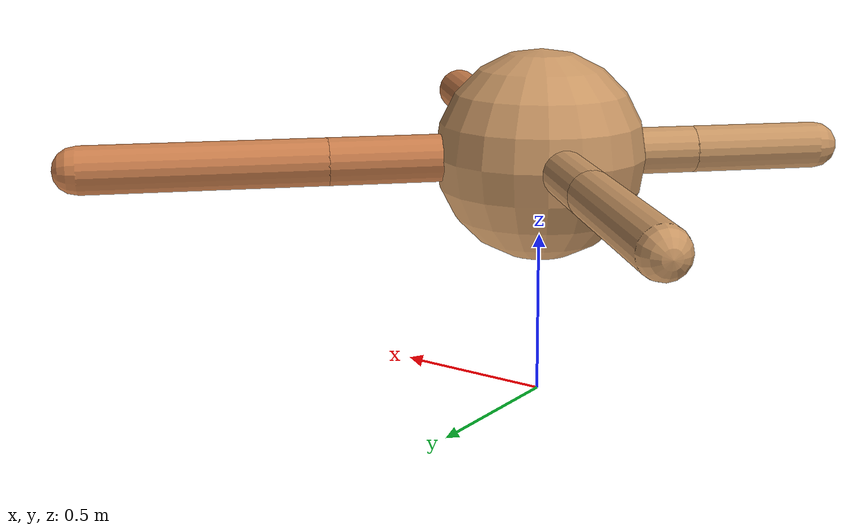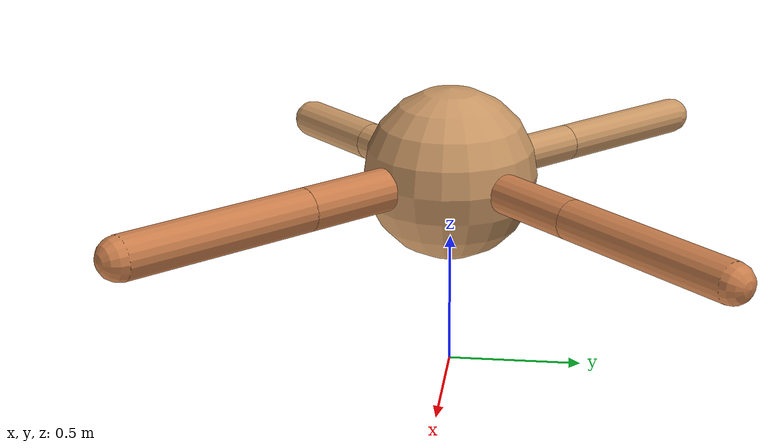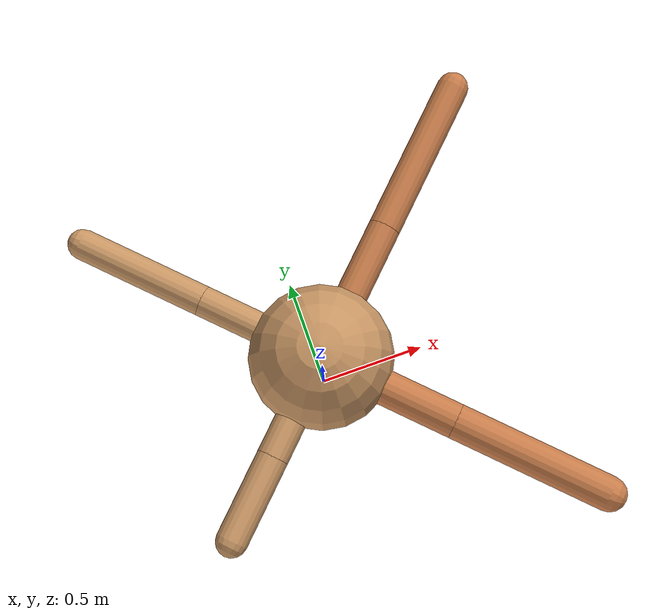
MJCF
<?xml version="1.0" ?>
<mujoco model="ant">

	<compiler angle="degree" coordinate="local" inertiafromgeom="true"/>

	<option integrator="RK4" timestep="0.01"/>

	<custom>

		<numeric data="0.0 0.0 0.55 1.0 0.0 0.0 0.0 0.0 1.0 0.0 -1.0 0.0 -1.0 0.0 1.0" name="init_qpos"/>

	</custom>

	<default>

		<joint armature="1" damping="1" limited="true"/>

		<geom conaffinity="0" condim="3" density="5.0" friction="1.5 0.1 0.1" margin="0.01" rgba="0.8 0.6 0.4 1"/>

	</default>

	<worldbody>

		<body name="torso" pos="0 0 0.75">

			<geom name="torso_geom" pos="0 0 0" size="0.31991913842376096" type="sphere"/>

			<!--joint armature="0" damping="0" limited="false" margin="0.01" name="root" pos="0 0 0" type="free"/-->

			<body name="front_left_leg" pos="0 0 0">

				<geom fromto="0 0 0 0.2 0.2 0" name="aux_1_geom" size="0.07135658606022607" type="capsule" rgba=".8 .5 .3 1"/>

				<body name="aux_1" pos="0.2 0.2 0">

					<joint axis="0 0 1" name="hip_1" pos="0.0 0.0 0.0" range="-40 40" type="hinge"/>

					<geom fromto="0 0 0 0.2536873119409053 0.2536873119409053 0" name="left_leg_geom" size="0.07135658606022607" type="capsule" rgba=".8 .5 .3 1"/>

					<body pos="0.2536873119409053 0.2536873119409053 0" name="front_left_foot">

						<joint axis="-1 1 0" name="ankle_1" pos="0.0 0.0 0.0" range="30 100" type="hinge"/>

						<geom fromto="0 0 0 0.5073746238818106 0.5073746238818106 0" name="left_ankle_geom" size="0.07135658606022607" type="capsule" rgba=".8 .5 .3 1"/>

					</body>

				</body>

			</body>

			<body name="front_right_leg" pos="0 0 0">

				<geom fromto="0 0 0 -0.2 0.2 0" name="aux_2_geom" size="0.06820959366630722" type="capsule"/>

				<body name="aux_2" pos="-0.2 0.2 0">

					<joint axis="0 0 1" name="hip_2" pos="0.0 0.0 0.0" range="-40 40" type="hinge"/>

					<geom fromto="0 0 0 -0.208276435772427 0.208276435772427 0" name="right_leg_geom" size="0.06820959366630722" type="capsule"/>

					<body pos="-0.208276435772427 0.208276435772427 0" name="front_right_foot">

						<joint axis="1 1 0" name="ankle_2" pos="0.0 0.0 0.0" range="-100 -30" type="hinge"/>

						<geom fromto="0 0 0 -0.416552871544854 0.416552871544854 0" name="right_ankle_geom" size="0.06820959366630722" type="capsule"/>

					</body>

				</body>

			</body>

			<body name="left_back_leg" pos="0 0 0">

				<geom fromto="0 0 0 -0.2 -0.2 0" name="aux_3_geom" size="0.07104019591496603" type="capsule"/>

				<body name="aux_3" pos="-0.2 -0.2 0">

					<joint axis="0 0 1" name="hip_3" pos="0.0 0.0 0.0" range="-40 40" type="hinge"/>

					<geom fromto="0 0 0 -0.14002619028495972 -0.14002619028495972 0" name="back_leg_geom" size="0.07104019591496603" type="capsule"/>

					<body pos="-0.14002619028495972 -0.14002619028495972 0" name="left_back_foot">

						<joint axis="-1 1 0" name="ankle_3" pos="0.0 0.0 0.0" range="-100 -30" type="hinge"/>

						<geom fromto="0 0 0 -0.28005238056991943 -0.28005238056991943 0" name="third_ankle_geom" size="0.07104019591496603" type="capsule"/>

					</body>

				</body>

			</body>

			<body name="right_back_leg" pos="0 0 0">

				<geom fromto="0 0 0 0.2 -0.2 0" name="aux_4_geom" size="0.07846960325292794" type="capsule" rgba=".8 .5 .3 1"/>

				<body name="aux_4" pos="0.2 -0.2 0">

					<joint axis="0 0 1" name="hip_4" pos="0.0 0.0 0.0" range="-40 40" type="hinge"/>

					<geom fromto="0 0 0 0.25518592860953376 -0.25518592860953376 0" name="rightback_leg_geom" size="0.07846960325292794" type="capsule" rgba=".8 .5 .3 1"/>

					<body pos="0.25518592860953376 -0.25518592860953376 0" name="right_back_foot">

						<joint axis="1 1 0" name="ankle_4" pos="0.0 0.0 0.0" range="30 100" type="hinge"/>

						<geom fromto="0 0 0 0.5103718572190675 -0.5103718572190675 0" name="fourth_ankle_geom" size="0.07846960325292794" type="capsule" rgba=".8 .5 .3 1"/>

					</body>

				</body>

			</body>

		</body>

	</worldbody>

	<actuator>

		<motor ctrllimited="true" ctrlrange="-1.0 1.0" joint="hip_4" gear="150"/>

		<motor ctrllimited="true" ctrlrange="-1.0 1.0" joint="ankle_4" gear="150"/>

		<motor ctrllimited="true" ctrlrange="-1.0 1.0" joint="hip_1" gear="150"/>

		<motor ctrllimited="true" ctrlrange="-1.0 1.0" joint="ankle_1" gear="150"/>

		<motor ctrllimited="true" ctrlrange="-1.0 1.0" joint="hip_2" gear="150"/>

		<motor ctrllimited="true" ctrlrange="-1.0 1.0" joint="ankle_2" gear="150"/>

		<motor ctrllimited="true" ctrlrange="-1.0 1.0" joint="hip_3" gear="150"/>

		<motor ctrllimited="true" ctrlrange="-1.0 1.0" joint="ankle_3" gear="150"/>

	</actuator>

</mujoco>
